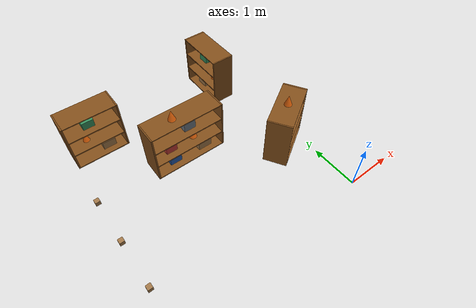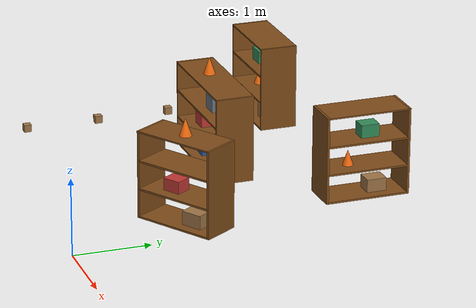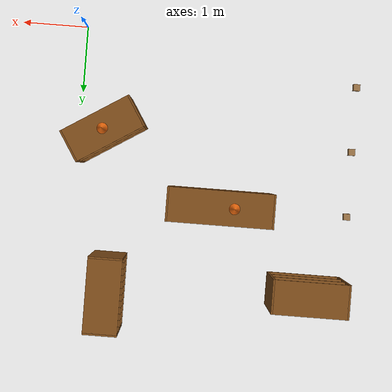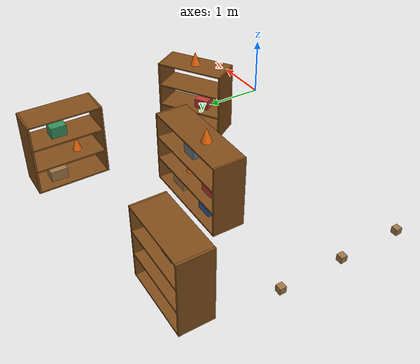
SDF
<sdf version="1.8">
 <world name="large_warehouse">
  <model name="ground_plane">
   <static>true</static>
   <link name="link">
    <collision name="collision">
     <geometry><plane><normal>0 0 1</normal><size>25 25</size></plane></geometry>
    </collision>
   </link>
  </model>
  <model name="box_obstacle_1">
   <static>true</static>
   <pose>-4.20 0.6173 0.03 0 0 0</pose>
   <link name="link">
    <collision name="collision"><geometry><box><size>0.1 0.1 0.1</size></box></geometry></collision>
    <visual name="visual">
     <geometry><box><size>0.1 0.1 0.1</size></box></geometry>
     <material><ambient>0.62 0.46 0.28 1</ambient><diffuse>0.62 0.46 0.28 1</diffuse></material>
    </visual>
   </link>
  </model>
  <model name="box_obstacle_2">
   <static>true</static>
   <pose>-4.20 1.617 0.03 0 0 0</pose>
   <link name="link">
    <collision name="collision"><geometry><box><size>0.1 0.1 0.1</size></box></geometry></collision>
    <visual name="visual">
     <geometry><box><size>0.1 0.1 0.1</size></box></geometry>
     <material><ambient>0.62 0.46 0.28 1</ambient><diffuse>0.62 0.46 0.28 1</diffuse></material>
    </visual>
   </link>
  </model>
  <model name="box_obstacle_3">
   <static>true</static>
   <pose>-4.20 2.617 0.03 0 0 0</pose>
   <link name="link">
    <collision name="collision"><geometry><box><size>0.1 0.1 0.1</size></box></geometry></collision>
    <visual name="visual">
     <geometry><box><size>0.1 0.1 0.1</size></box></geometry>
     <material><ambient>0.62 0.46 0.28 1</ambient><diffuse>0.62 0.46 0.28 1</diffuse></material>
    </visual>
   </link>
  </model>
  <model name="shelf_1">
   <static>true</static>
   <pose>-2.2101 2.5934 0.03 0 0 1.5697</pose>
   <link name="link">
    <collision name="col_left">
     <pose>0 0.765 0.575 0 0 0</pose>
     <geometry><box><size>0.50 0.032 1.15</size></box></geometry>
    </collision>
    <visual name="vis_left">
     <pose>0 0.765 0.575 0 0 0</pose>
     <geometry><box><size>0.50 0.032 1.15</size></box></geometry>
     <material><ambient>0.5 0.3 0.1 1</ambient><diffuse>0.5 0.3 0.1 1</diffuse></material>
    </visual>
    <collision name="col_right">
     <pose>0 -0.765 0.575 0 0 0</pose>
     <geometry><box><size>0.50 0.032 1.15</size></box></geometry>
    </collision>
    <visual name="vis_right">
     <pose>0 -0.765 0.575 0 0 0</pose>
     <geometry><box><size>0.50 0.032 1.15</size></box></geometry>
     <material><ambient>0.5 0.3 0.1 1</ambient><diffuse>0.5 0.3 0.1 1</diffuse></material>
    </visual>
    <collision name="col_lower">
     <pose>0 0 0.0125 0 0 0</pose>
     <geometry><box><size>0.50 1.51 0.025</size></box></geometry>
    </collision>
    <visual name="vis_lower">
     <pose>0 0 0.0125 0 0 0</pose>
     <geometry><box><size>0.50 1.51 0.025</size></box></geometry>
     <material><ambient>0.5 0.3 0.1 1</ambient><diffuse>0.5 0.3 0.1 1</diffuse></material>
    </visual>
    <collision name="col_shelf_1">
     <pose>0 0 0.385 0 0 0</pose>
     <geometry><box><size>0.50 1.51 0.025</size></box></geometry>
    </collision>
    <visual name="vis_shelf_1">
     <pose>0 0 0.385 0 0 0</pose>
     <geometry><box><size>0.50 1.51 0.025</size></box></geometry>
     <material><ambient>0.5 0.3 0.1 1</ambient><diffuse>0.5 0.3 0.1 1</diffuse></material>
    </visual>
    <collision name="col_shelf_2">
     <pose>0 0 0.755 0 0 0</pose>
     <geometry><box><size>0.50 1.51 0.025</size></box></geometry>
    </collision>
    <visual name="vis_shelf_2">
     <pose>0 0 0.755 0 0 0</pose>
     <geometry><box><size>0.50 1.51 0.025</size></box></geometry>
     <material><ambient>0.5 0.3 0.1 1</ambient><diffuse>0.5 0.3 0.1 1</diffuse></material>
    </visual>
    <collision name="col_upper">
     <pose>0 0 1.140 0 0 0</pose>
     <geometry><box><size>0.50 1.51 0.020</size></box></geometry>
    </collision>
    <visual name="vis_upper">
     <pose>0 0 1.140 0 0 0</pose>
     <geometry><box><size>0.50 1.51 0.020</size></box></geometry>
     <material><ambient>0.5 0.3 0.1 1</ambient><diffuse>0.5 0.3 0.1 1</diffuse></material>
    </visual>
    <collision name="col_b1">
     <pose>0 -0.4 0.115 0 0 0</pose>
     <geometry><box><size>0.24 0.3 0.18</size></box></geometry>
    </collision>
    <visual name="vis_b1">
     <pose>0 -0.4 0.115 0 0 0</pose>
     <geometry><box><size>0.24 0.3 0.18</size></box></geometry>
     <material><ambient>0.62 0.46 0.28 1</ambient><diffuse>0.62 0.46 0.28 1</diffuse></material>
    </visual>
    <collision name="col_b2">
     <pose>0 0.3 0.1 0 0 0</pose>
     <geometry><box><size>0.22 0.26 0.15</size></box></geometry>
    </collision>
    <visual name="vis_b2">
     <pose>0 0.3 0.1 0 0 0</pose>
     <geometry><box><size>0.22 0.26 0.15</size></box></geometry>
     <material><ambient>0.15 0.35 0.65 1</ambient><diffuse>0.15 0.35 0.65 1</diffuse></material>
    </visual>
    <collision name="col_c1">
     <pose>0 -0.2 0.5075 0 0 0</pose>
     <geometry><cone><radius>0.08</radius><length>0.22</length></cone></geometry>
    </collision>
    <visual name="vis_c1">
     <pose>0 -0.2 0.5075 0 0 0</pose>
     <geometry><cone><radius>0.08</radius><length>0.22</length></cone></geometry>
     <material><ambient>0.95 0.42 0.05 1</ambient><diffuse>0.95 0.42 0.05 1</diffuse></material>
    </visual>
    <collision name="col_b3">
     <pose>0 0.35 0.4825 0 0 0</pose>
     <geometry><box><size>0.2 0.24 0.17</size></box></geometry>
    </collision>
    <visual name="vis_b3">
     <pose>0 0.35 0.4825 0 0 0</pose>
     <geometry><box><size>0.2 0.24 0.17</size></box></geometry>
     <material><ambient>0.75 0.22 0.2 1</ambient><diffuse>0.75 0.22 0.2 1</diffuse></material>
    </visual>
    <collision name="col_b4">
     <pose>0 -0.1 0.8625 0 0 0</pose>
     <geometry><box><size>0.22 0.25 0.19</size></box></geometry>
    </collision>
    <visual name="vis_b4">
     <pose>0 -0.1 0.8625 0 0 0</pose>
     <geometry><box><size>0.22 0.25 0.19</size></box></geometry>
     <material><ambient>0.42 0.46 0.5 1</ambient><diffuse>0.42 0.46 0.5 1</diffuse></material>
    </visual>
    <collision name="col_c2">
     <pose>0 0.2 1.26 0 0 0</pose>
     <geometry><cone><radius>0.08</radius><length>0.22</length></cone></geometry>
    </collision>
    <visual name="vis_c2">
     <pose>0 0.2 1.26 0 0 0</pose>
     <geometry><cone><radius>0.08</radius><length>0.22</length></cone></geometry>
     <material><ambient>0.95 0.42 0.05 1</ambient><diffuse>0.95 0.42 0.05 1</diffuse></material>
    </visual>
   </link>
  </model>
  <model name="shelf_10">
   <static>true</static>
   <pose>-0.6226 3.9863 0.03 0 0 0.0</pose>
   <link name="link">
    <collision name="col_left">
     <pose>0 0.545 0.575 0 0 0</pose>
     <geometry><box><size>0.50 0.032 1.15</size></box></geometry>
    </collision>
    <visual name="vis_left">
     <pose>0 0.545 0.575 0 0 0</pose>
     <geometry><box><size>0.50 0.032 1.15</size></box></geometry>
     <material><ambient>0.5 0.3 0.1 1</ambient><diffuse>0.5 0.3 0.1 1</diffuse></material>
    </visual>
    <collision name="col_right">
     <pose>0 -0.545 0.575 0 0 0</pose>
     <geometry><box><size>0.50 0.032 1.15</size></box></geometry>
    </collision>
    <visual name="vis_right">
     <pose>0 -0.545 0.575 0 0 0</pose>
     <geometry><box><size>0.50 0.032 1.15</size></box></geometry>
     <material><ambient>0.5 0.3 0.1 1</ambient><diffuse>0.5 0.3 0.1 1</diffuse></material>
    </visual>
    <collision name="col_lower">
     <pose>0 0 0.0125 0 0 0</pose>
     <geometry><box><size>0.50 1.07 0.025</size></box></geometry>
    </collision>
    <visual name="vis_lower">
     <pose>0 0 0.0125 0 0 0</pose>
     <geometry><box><size>0.50 1.07 0.025</size></box></geometry>
     <material><ambient>0.5 0.3 0.1 1</ambient><diffuse>0.5 0.3 0.1 1</diffuse></material>
    </visual>
    <collision name="col_shelf_1">
     <pose>0 0 0.385 0 0 0</pose>
     <geometry><box><size>0.50 1.07 0.025</size></box></geometry>
    </collision>
    <visual name="vis_shelf_1">
     <pose>0 0 0.385 0 0 0</pose>
     <geometry><box><size>0.50 1.07 0.025</size></box></geometry>
     <material><ambient>0.5 0.3 0.1 1</ambient><diffuse>0.5 0.3 0.1 1</diffuse></material>
    </visual>
    <collision name="col_shelf_2">
     <pose>0 0 0.755 0 0 0</pose>
     <geometry><box><size>0.50 1.07 0.025</size></box></geometry>
    </collision>
    <visual name="vis_shelf_2">
     <pose>0 0 0.755 0 0 0</pose>
     <geometry><box><size>0.50 1.07 0.025</size></box></geometry>
     <material><ambient>0.5 0.3 0.1 1</ambient><diffuse>0.5 0.3 0.1 1</diffuse></material>
    </visual>
    <collision name="col_upper">
     <pose>0 0 1.140 0 0 0</pose>
     <geometry><box><size>0.50 1.07 0.020</size></box></geometry>
    </collision>
    <visual name="vis_upper">
     <pose>0 0 1.140 0 0 0</pose>
     <geometry><box><size>0.50 1.07 0.020</size></box></geometry>
     <material><ambient>0.5 0.3 0.1 1</ambient><diffuse>0.5 0.3 0.1 1</diffuse></material>
    </visual>
    <collision name="col_b1">
     <pose>0 0.18 0.11 0 0 0</pose>
     <geometry><box><size>0.22 0.26 0.17</size></box></geometry>
    </collision>
    <visual name="vis_b1">
     <pose>0 0.18 0.11 0 0 0</pose>
     <geometry><box><size>0.22 0.26 0.17</size></box></geometry>
     <material><ambient>0.62 0.46 0.28 1</ambient><diffuse>0.62 0.46 0.28 1</diffuse></material>
    </visual>
    <collision name="col_c1">
     <pose>0 -0.18 0.4975 0 0 0</pose>
     <geometry><cone><radius>0.07</radius><length>0.2</length></cone></geometry>
    </collision>
    <visual name="vis_c1">
     <pose>0 -0.18 0.4975 0 0 0</pose>
     <geometry><cone><radius>0.07</radius><length>0.2</length></cone></geometry>
     <material><ambient>0.95 0.42 0.05 1</ambient><diffuse>0.95 0.42 0.05 1</diffuse></material>
    </visual>
    <collision name="col_b2">
     <pose>0 0.08 0.8525 0 0 0</pose>
     <geometry><box><size>0.2 0.24 0.17</size></box></geometry>
    </collision>
    <visual name="vis_b2">
     <pose>0 0.08 0.8525 0 0 0</pose>
     <geometry><box><size>0.2 0.24 0.17</size></box></geometry>
     <material><ambient>0.2 0.55 0.35 1</ambient><diffuse>0.2 0.55 0.35 1</diffuse></material>
    </visual>
   </link>
  </model>
  <model name="shelf_12">
   <static>true</static>
   <pose>-3.60 3.80 0.03 0 0 1.57</pose>
   <link name="link">
    <collision name="col_left">
     <pose>0 0.545 0.575 0 0 0</pose>
     <geometry><box><size>0.50 0.032 1.15</size></box></geometry>
    </collision>
    <visual name="vis_left">
     <pose>0 0.545 0.575 0 0 0</pose>
     <geometry><box><size>0.50 0.032 1.15</size></box></geometry>
     <material><ambient>0.5 0.3 0.1 1</ambient><diffuse>0.5 0.3 0.1 1</diffuse></material>
    </visual>
    <collision name="col_right">
     <pose>0 -0.545 0.575 0 0 0</pose>
     <geometry><box><size>0.50 0.032 1.15</size></box></geometry>
    </collision>
    <visual name="vis_right">
     <pose>0 -0.545 0.575 0 0 0</pose>
     <geometry><box><size>0.50 0.032 1.15</size></box></geometry>
     <material><ambient>0.5 0.3 0.1 1</ambient><diffuse>0.5 0.3 0.1 1</diffuse></material>
    </visual>
    <collision name="col_lower">
     <pose>0 0 0.0125 0 0 0</pose>
     <geometry><box><size>0.50 1.07 0.025</size></box></geometry>
    </collision>
    <visual name="vis_lower">
     <pose>0 0 0.0125 0 0 0</pose>
     <geometry><box><size>0.50 1.07 0.025</size></box></geometry>
     <material><ambient>0.5 0.3 0.1 1</ambient><diffuse>0.5 0.3 0.1 1</diffuse></material>
    </visual>
    <collision name="col_shelf_1">
     <pose>0 0 0.385 0 0 0</pose>
     <geometry><box><size>0.50 1.07 0.025</size></box></geometry>
    </collision>
    <visual name="vis_shelf_1">
     <pose>0 0 0.385 0 0 0</pose>
     <geometry><box><size>0.50 1.07 0.025</size></box></geometry>
     <material><ambient>0.5 0.3 0.1 1</ambient><diffuse>0.5 0.3 0.1 1</diffuse></material>
    </visual>
    <collision name="col_shelf_2">
     <pose>0 0 0.755 0 0 0</pose>
     <geometry><box><size>0.50 1.07 0.025</size></box></geometry>
    </collision>
    <visual name="vis_shelf_2">
     <pose>0 0 0.755 0 0 0</pose>
     <geometry><box><size>0.50 1.07 0.025</size></box></geometry>
     <material><ambient>0.5 0.3 0.1 1</ambient><diffuse>0.5 0.3 0.1 1</diffuse></material>
    </visual>
    <collision name="col_upper">
     <pose>0 0 1.140 0 0 0</pose>
     <geometry><box><size>0.50 1.07 0.020</size></box></geometry>
    </collision>
    <visual name="vis_upper">
     <pose>0 0 1.140 0 0 0</pose>
     <geometry><box><size>0.50 1.07 0.020</size></box></geometry>
     <material><ambient>0.5 0.3 0.1 1</ambient><diffuse>0.5 0.3 0.1 1</diffuse></material>
    </visual>
    <collision name="col_b1">
     <pose>0 -0.2 0.115 0 0 0</pose>
     <geometry><box><size>0.22 0.28 0.18</size></box></geometry>
    </collision>
    <visual name="vis_b1">
     <pose>0 -0.2 0.115 0 0 0</pose>
     <geometry><box><size>0.22 0.28 0.18</size></box></geometry>
     <material><ambient>0.62 0.46 0.28 1</ambient><diffuse>0.62 0.46 0.28 1</diffuse></material>
    </visual>
    <collision name="col_c1">
     <pose>0 0.18 0.4975 0 0 0</pose>
     <geometry><cone><radius>0.07</radius><length>0.2</length></cone></geometry>
    </collision>
    <visual name="vis_c1">
     <pose>0 0.18 0.4975 0 0 0</pose>
     <geometry><cone><radius>0.07</radius><length>0.2</length></cone></geometry>
     <material><ambient>0.95 0.42 0.05 1</ambient><diffuse>0.95 0.42 0.05 1</diffuse></material>
    </visual>
    <collision name="col_b2">
     <pose>0 0.05 0.8525 0 0 0</pose>
     <geometry><box><size>0.2 0.24 0.17</size></box></geometry>
    </collision>
    <visual name="vis_b2">
     <pose>0 0.05 0.8525 0 0 0</pose>
     <geometry><box><size>0.2 0.24 0.17</size></box></geometry>
     <material><ambient>0.2 0.55 0.35 1</ambient><diffuse>0.2 0.55 0.35 1</diffuse></material>
    </visual>
   </link>
  </model>
  <model name="shelf_17">
   <static>true</static>
   <pose>-0.4378 1.5866 0.03 0 0 2.1298</pose>
   <link name="link">
    <collision name="col_left">
     <pose>0 0.545 0.575 0 0 0</pose>
     <geometry><box><size>0.50 0.032 1.15</size></box></geometry>
    </collision>
    <visual name="vis_left">
     <pose>0 0.545 0.575 0 0 0</pose>
     <geometry><box><size>0.50 0.032 1.15</size></box></geometry>
     <material><ambient>0.5 0.3 0.1 1</ambient><diffuse>0.5 0.3 0.1 1</diffuse></material>
    </visual>
    <collision name="col_right">
     <pose>0 -0.545 0.575 0 0 0</pose>
     <geometry><box><size>0.50 0.032 1.15</size></box></geometry>
    </collision>
    <visual name="vis_right">
     <pose>0 -0.545 0.575 0 0 0</pose>
     <geometry><box><size>0.50 0.032 1.15</size></box></geometry>
     <material><ambient>0.5 0.3 0.1 1</ambient><diffuse>0.5 0.3 0.1 1</diffuse></material>
    </visual>
    <collision name="col_lower">
     <pose>0 0 0.0125 0 0 0</pose>
     <geometry><box><size>0.50 1.07 0.025</size></box></geometry>
    </collision>
    <visual name="vis_lower">
     <pose>0 0 0.0125 0 0 0</pose>
     <geometry><box><size>0.50 1.07 0.025</size></box></geometry>
     <material><ambient>0.5 0.3 0.1 1</ambient><diffuse>0.5 0.3 0.1 1</diffuse></material>
    </visual>
    <collision name="col_shelf_1">
     <pose>0 0 0.385 0 0 0</pose>
     <geometry><box><size>0.50 1.07 0.025</size></box></geometry>
    </collision>
    <visual name="vis_shelf_1">
     <pose>0 0 0.385 0 0 0</pose>
     <geometry><box><size>0.50 1.07 0.025</size></box></geometry>
     <material><ambient>0.5 0.3 0.1 1</ambient><diffuse>0.5 0.3 0.1 1</diffuse></material>
    </visual>
    <collision name="col_shelf_2">
     <pose>0 0 0.755 0 0 0</pose>
     <geometry><box><size>0.50 1.07 0.025</size></box></geometry>
    </collision>
    <visual name="vis_shelf_2">
     <pose>0 0 0.755 0 0 0</pose>
     <geometry><box><size>0.50 1.07 0.025</size></box></geometry>
     <material><ambient>0.5 0.3 0.1 1</ambient><diffuse>0.5 0.3 0.1 1</diffuse></material>
    </visual>
    <collision name="col_upper">
     <pose>0 0 1.140 0 0 0</pose>
     <geometry><box><size>0.50 1.07 0.020</size></box></geometry>
    </collision>
    <visual name="vis_upper">
     <pose>0 0 1.140 0 0 0</pose>
     <geometry><box><size>0.50 1.07 0.020</size></box></geometry>
     <material><ambient>0.5 0.3 0.1 1</ambient><diffuse>0.5 0.3 0.1 1</diffuse></material>
    </visual>
    <collision name="col_b1">
     <pose>0 -0.18 0.115 0 0 0</pose>
     <geometry><box><size>0.24 0.28 0.18</size></box></geometry>
    </collision>
    <visual name="vis_b1">
     <pose>0 -0.18 0.115 0 0 0</pose>
     <geometry><box><size>0.24 0.28 0.18</size></box></geometry>
     <material><ambient>0.62 0.46 0.28 1</ambient><diffuse>0.62 0.46 0.28 1</diffuse></material>
    </visual>
    <collision name="col_b2">
     <pose>0 0.15 0.4775 0 0 0</pose>
     <geometry><box><size>0.2 0.24 0.16</size></box></geometry>
    </collision>
    <visual name="vis_b2">
     <pose>0 0.15 0.4775 0 0 0</pose>
     <geometry><box><size>0.2 0.24 0.16</size></box></geometry>
     <material><ambient>0.75 0.22 0.2 1</ambient><diffuse>0.75 0.22 0.2 1</diffuse></material>
    </visual>
    <collision name="col_c1">
     <pose>0 0 1.26 0 0 0</pose>
     <geometry><cone><radius>0.08</radius><length>0.22</length></cone></geometry>
    </collision>
    <visual name="vis_c1">
     <pose>0 0 1.26 0 0 0</pose>
     <geometry><cone><radius>0.08</radius><length>0.22</length></cone></geometry>
     <material><ambient>0.95 0.42 0.05 1</ambient><diffuse>0.95 0.42 0.05 1</diffuse></material>
    </visual>
   </link>
  </model>
 </world>
</sdf>
